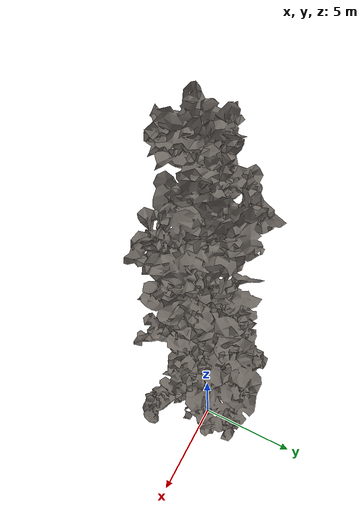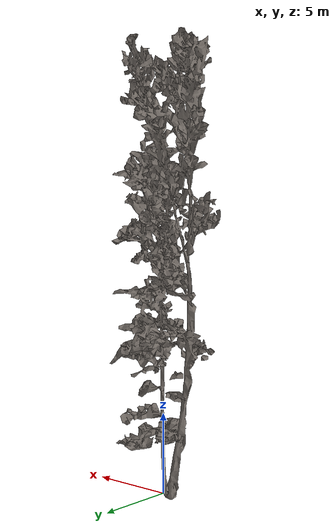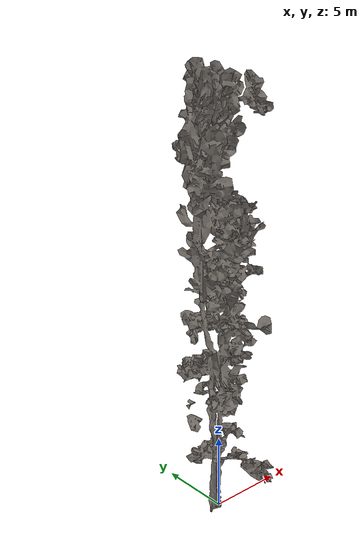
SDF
<?xml version="1.0" ?>
<sdf version="1.6">
  <model name="tree6">
    <static>true</static>
    <link name="tree_link">

      <visual name="tree_visual">
        <geometry>
          <mesh>
            <uri>model://tree6/meshes/tree_mesh.dae</uri>
          </mesh>
        </geometry>
      </visual>

      <collision name="tree_collision">
        <geometry>
          <mesh>
            <uri>model://tree6/meshes/tree_collision.stl</uri>
          </mesh>
        </geometry>
      </collision>

    </link>
  </model>
</sdf>
